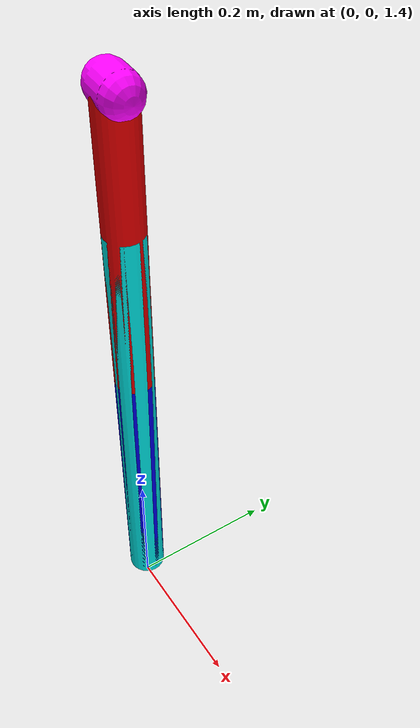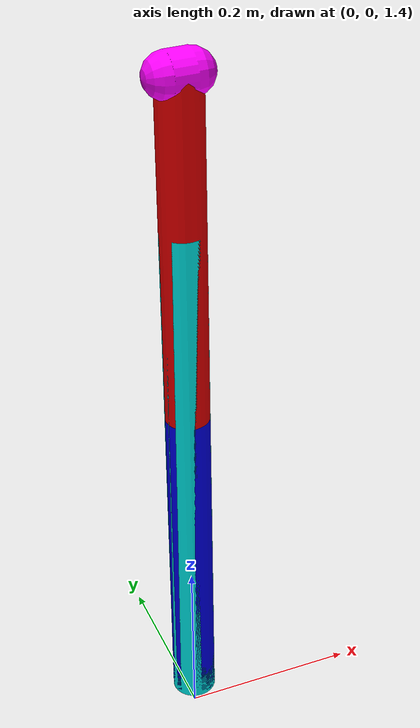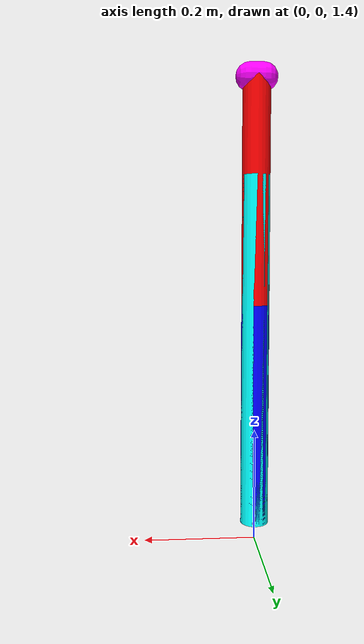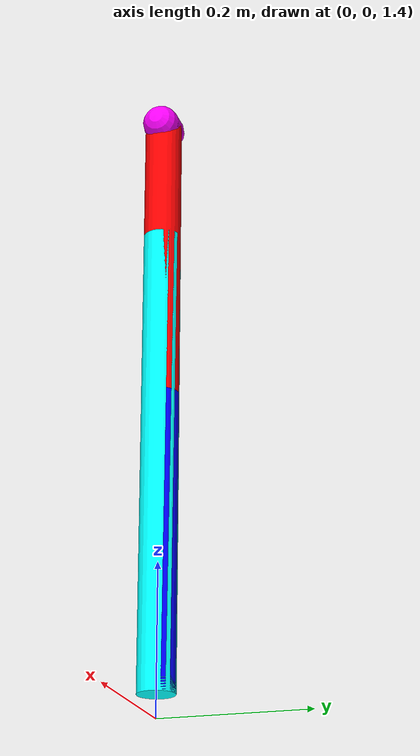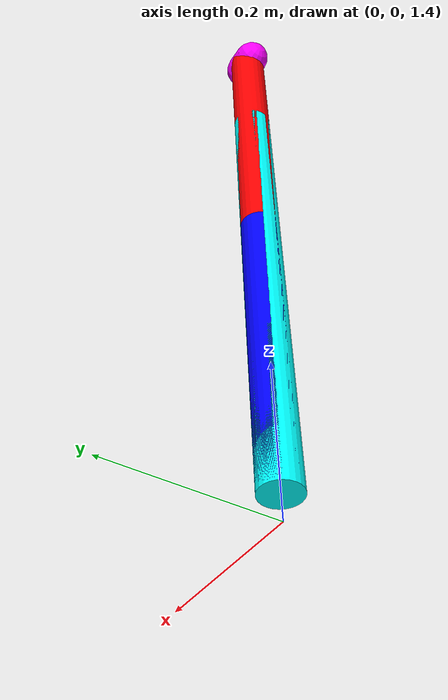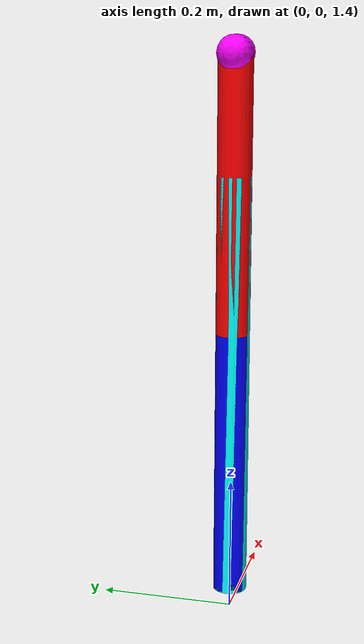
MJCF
<mujoco model="five link walker">
	<compiler 	angle="radian" eulerseq="XYZ" balanceinertia="true"/>

	<worldbody>
	<!-- set up a light pointing down on the robot -->
		<light directional="true" pos="-0.5 0.5 3" dir="0 0 -1" />
		<!-- add a floor so we don't stare off into the abyss -->
		<geom name="floor" pos="0 0 0" size="1 1 1" type="plane" rgba="1 0.83 0.61 0.5" contype="1" conaffinity="2"/>
		<!--start building model-->

		<body name="base" pos="0 0 1.43">
			<geom name="torso" type="cylinder" size="0.025 0.315" pos="0 0 0.315" euler="0 0 0" rgba="0 255 61 0.9" contype="2" conaffinity="3" />
			<inertial pos="0 0 0.24" mass="12" diaginertia="0 1.33 0"/>
			<joint type='free' limited='false'/>
			<!-- nest each child piece inside the parent body tags -->
			<body name="right_thigh" pos="0 0 0">
				<!-- this joint connects link1 to the base -->
				<joint name="q1_right" axis="0 1 0" pos="0 0 0"/>
				<geom name="right_thigh" type="cylinder" size="0.025 0.2" pos="0 0 0.2" euler="0 0 0" rgba="0 0 1 1" contype="2" conaffinity="4"/>

				<inertial pos="0 0 0.11" mass="6.8" diaginertia="0 0.47 0"/>
				<body name="right_shin" pos="0 0 0.4">

					<joint name="q2_right" axis="0 1 0" pos="0 0 0"/>
					<geom name="right_shin" type="cylinder" size="0.025 0.2" pos="0 0 0.2" euler="0 0 0" rgba="1 0 0 1" contype="2" conaffinity="5"/>
					<inertial pos="0 0 0.24" mass="6.8" diaginertia="0 0.2 0"/>
					<!--creating feet-->
					<geom name="right_foot" type="capsule" size="0.025 0.0125" pos="0 0 0.4" euler="0 1.57 0" rgba="142 0 71 1" contype="6" conaffinity="0"/>

				</body>
			</body>
			<body name="left_thigh" pos="0 0 0">
				<!-- this joint connects link1 to the base -->
				<joint name="q1_left" axis="0 1 0" pos="0 0 0"/>
				<geom name="left_thigh" type="cylinder" size="0.025 0.2" pos="0 0 0.2" euler="0 0 0" rgba="0 0 1 1" contype="2" conaffinity="7"/>

				<inertial pos="0 0 0.11" mass="6.8" diaginertia="0 0.47 0"/>
				<body name="left_shin" pos="0 0 0.4">

					<joint name="q2_left" axis="0 1 0" pos="0 0 0"/>
					<geom name="left_shin" type="cylinder" size="0.025 0.2" pos="0 0 0.2" euler="0 0 0" rgba="1 0 0 1" contype="2" conaffinity="8"/>
					<inertial pos="0 0 0.24" mass="6.8" diaginertia="0 0.2 0"/>
					<!--creating feet-->
					<geom name="left_foot" type="capsule" size="0.025 0.0125" pos="0 0 0.4" euler="0 1.57 0" rgba="142 0 71 1" contype="2" conaffinity="9"/>

				</body>
			</body>

		</body>
	</worldbody>

    <!-- attach actuators to joints -->
    <actuator>
        <motor name="q1_right_motor" joint="q1_right" gear="50" />
        <motor name="q2_right_motor" joint="q2_right" gear="50"/>
	<motor name="q1_left_motor" joint="q1_left" gear="50" />
        <motor name="q2_left_motor" joint="q2_left" gear="50"/>
    </actuator>

</mujoco>
